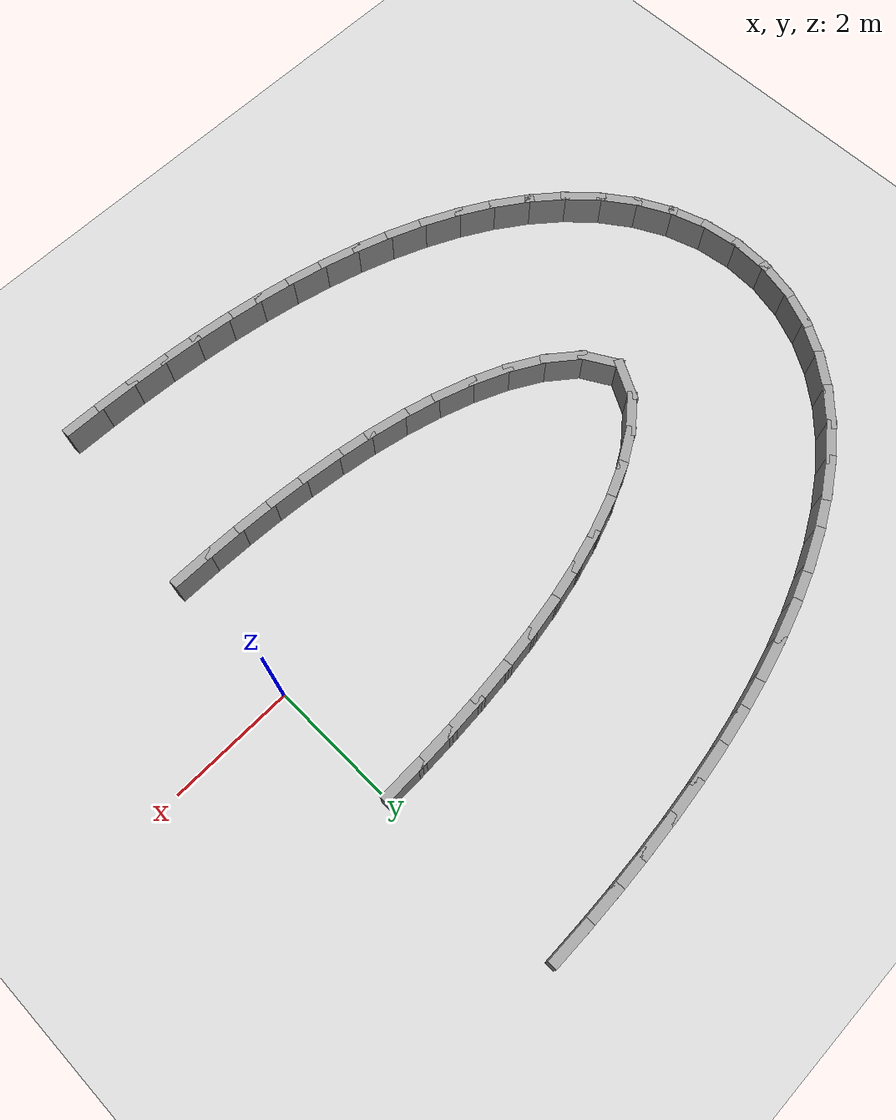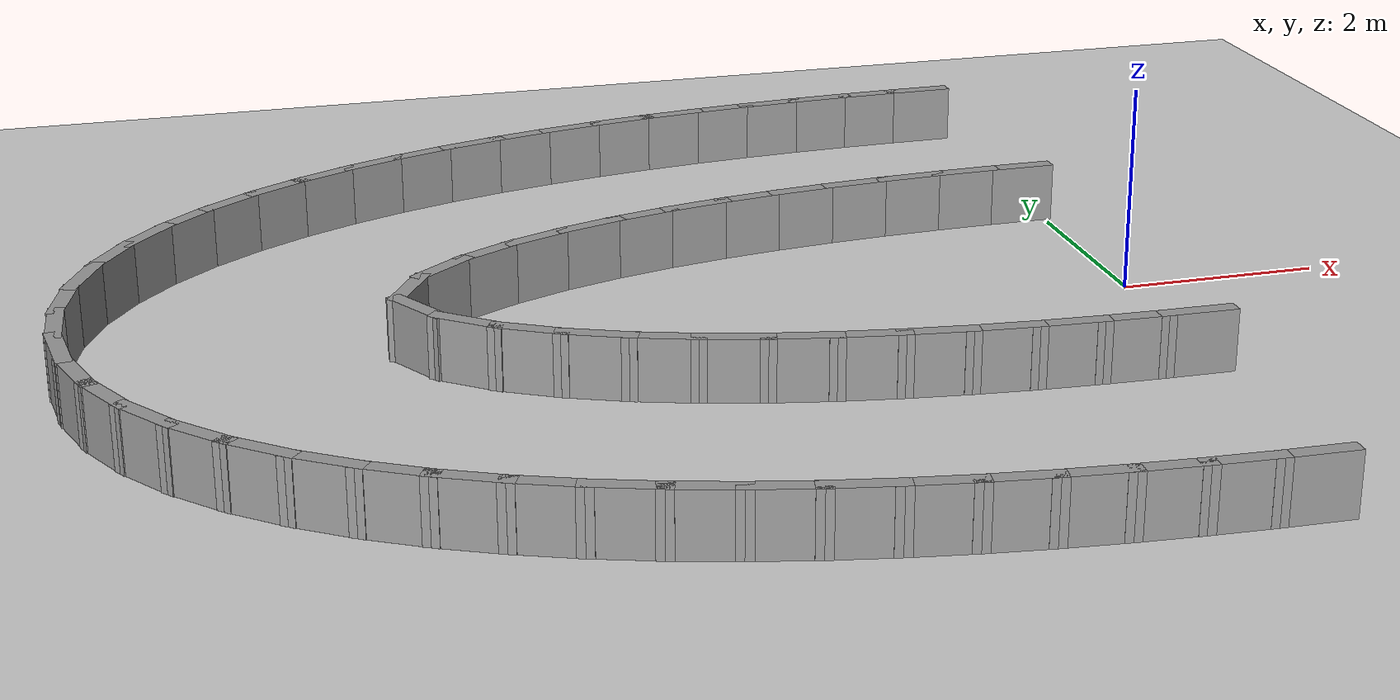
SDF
<sdf version="1.7">
 <world name="default">
  <model name="ground_plane">
   <static>1</static>
   <link name="link">
    <collision name="collision">
     <geometry><plane><normal>0 0 1</normal><size>100 100</size></plane></geometry>
     <surface><friction><ode><mu>100</mu><mu2>50</mu2></ode></friction></surface>
    </collision>
    <visual name="visual">
     <cast_shadows>0</cast_shadows>
     <geometry><plane><normal>0 0 1</normal><size>100 100</size></plane></geometry>
     <material>
      <script><uri>file://media/materials/scripts/gazebo.material</uri><name>Gazebo/Grey</name></script>
     </material>
    </visual>
   </link>
  </model>
  <model name="rand_lobed_03">
   <link name="Wall_13">
    <collision name="Wall_13_Collision">
     <geometry><box><size>0.7500 0.1500 0.6000</size></box></geometry>
     <pose>0 0 0.3000 0 -0 0</pose>
    </collision>
    <visual name="Wall_13_Visual">
     <pose>0 0 0.3000 0 -0 0</pose>
     <geometry><box><size>0.7500 0.1500 0.6000</size></box></geometry>
     <material>
      <script><uri>file://media/materials/scripts/gazebo.material</uri><name>Gazebo/Grey</name></script>
      <ambient>1 1 1 1</ambient>
     </material>
    </visual>
    <pose>-0.3003 2.1726 0 0 -0 -3.13076</pose>
   </link>
   <link name="Wall_14">
    <collision name="Wall_14_Collision">
     <geometry><box><size>0.7500 0.1500 0.6000</size></box></geometry>
     <pose>0 0 0.3000 0 -0 0</pose>
    </collision>
    <visual name="Wall_14_Visual">
     <pose>0 0 0.3000 0 -0 0</pose>
     <geometry><box><size>0.7500 0.1500 0.6000</size></box></geometry>
     <material>
      <script><uri>file://media/materials/scripts/gazebo.material</uri><name>Gazebo/Grey</name></script>
      <ambient>1 1 1 1</ambient>
     </material>
    </visual>
    <pose>-0.9001 2.1594 0 0 -0 -3.10826</pose>
   </link>
   <link name="Wall_15">
    <collision name="Wall_15_Collision">
     <geometry><box><size>0.7500 0.1500 0.6000</size></box></geometry>
     <pose>0 0 0.3000 0 -0 0</pose>
    </collision>
    <visual name="Wall_15_Visual">
     <pose>0 0 0.3000 0 -0 0</pose>
     <geometry><box><size>0.7500 0.1500 0.6000</size></box></geometry>
     <material>
      <script><uri>file://media/materials/scripts/gazebo.material</uri><name>Gazebo/Grey</name></script>
      <ambient>1 1 1 1</ambient>
     </material>
    </visual>
    <pose>-1.4994 2.1319 0 0 -0 -3.08331</pose>
   </link>
   <link name="Wall_16">
    <collision name="Wall_16_Collision">
     <geometry><box><size>0.7500 0.1500 0.6000</size></box></geometry>
     <pose>0 0 0.3000 0 -0 0</pose>
    </collision>
    <visual name="Wall_16_Visual">
     <pose>0 0 0.3000 0 -0 0</pose>
     <geometry><box><size>0.7500 0.1500 0.6000</size></box></geometry>
     <material>
      <script><uri>file://media/materials/scripts/gazebo.material</uri><name>Gazebo/Grey</name></script>
      <ambient>1 1 1 1</ambient>
     </material>
    </visual>
    <pose>-2.0977 2.0884 0 0 -0 -3.05459</pose>
   </link>
   <link name="Wall_17">
    <collision name="Wall_17_Collision">
     <geometry><box><size>0.7500 0.1500 0.6000</size></box></geometry>
     <pose>0 0 0.3000 0 -0 0</pose>
    </collision>
    <visual name="Wall_17_Visual">
     <pose>0 0 0.3000 0 -0 0</pose>
     <geometry><box><size>0.7500 0.1500 0.6000</size></box></geometry>
     <material>
      <script><uri>file://media/materials/scripts/gazebo.material</uri><name>Gazebo/Grey</name></script>
      <ambient>1 1 1 1</ambient>
     </material>
    </visual>
    <pose>-2.6944 2.0262 0 0 -0 -3.02105</pose>
   </link>
   <link name="Wall_18">
    <collision name="Wall_18_Collision">
     <geometry><box><size>0.7500 0.1500 0.6000</size></box></geometry>
     <pose>0 0 0.3000 0 -0 0</pose>
    </collision>
    <visual name="Wall_18_Visual">
     <pose>0 0 0.3000 0 -0 0</pose>
     <geometry><box><size>0.7500 0.1500 0.6000</size></box></geometry>
     <material>
      <script><uri>file://media/materials/scripts/gazebo.material</uri><name>Gazebo/Grey</name></script>
      <ambient>1 1 1 1</ambient>
     </material>
    </visual>
    <pose>-3.2883 1.9424 0 0 -0 -2.98176</pose>
   </link>
   <link name="Wall_19">
    <collision name="Wall_19_Collision">
     <geometry><box><size>0.7499 0.1500 0.6000</size></box></geometry>
     <pose>0 0 0.3000 0 -0 0</pose>
    </collision>
    <visual name="Wall_19_Visual">
     <pose>0 0 0.3000 0 -0 0</pose>
     <geometry><box><size>0.7499 0.1500 0.6000</size></box></geometry>
     <material>
      <script><uri>file://media/materials/scripts/gazebo.material</uri><name>Gazebo/Grey</name></script>
      <ambient>1 1 1 1</ambient>
     </material>
    </visual>
    <pose>-3.8781 1.8333 0 0 -0 -2.93562</pose>
   </link>
   <link name="Wall_20">
    <collision name="Wall_20_Collision">
     <geometry><box><size>0.7499 0.1500 0.6000</size></box></geometry>
     <pose>0 0 0.3000 0 -0 0</pose>
    </collision>
    <visual name="Wall_20_Visual">
     <pose>0 0 0.3000 0 -0 0</pose>
     <geometry><box><size>0.7499 0.1500 0.6000</size></box></geometry>
     <material>
      <script><uri>file://media/materials/scripts/gazebo.material</uri><name>Gazebo/Grey</name></script>
      <ambient>1 1 1 1</ambient>
     </material>
    </visual>
    <pose>-4.4616 1.6947 0 0 -0 -2.88102</pose>
   </link>
   <link name="Wall_21">
    <collision name="Wall_21_Collision">
     <geometry><box><size>0.7499 0.1500 0.6000</size></box></geometry>
     <pose>0 0 0.3000 0 -0 0</pose>
    </collision>
    <visual name="Wall_21_Visual">
     <pose>0 0 0.3000 0 -0 0</pose>
     <geometry><box><size>0.7499 0.1500 0.6000</size></box></geometry>
     <material>
      <script><uri>file://media/materials/scripts/gazebo.material</uri><name>Gazebo/Grey</name></script>
      <ambient>1 1 1 1</ambient>
     </material>
    </visual>
    <pose>-5.0355 1.5213 0 0 -0 -2.81521</pose>
   </link>
   <link name="Wall_22">
    <collision name="Wall_22_Collision">
     <geometry><box><size>0.7498 0.1500 0.6000</size></box></geometry>
     <pose>0 0 0.3000 0 -0 0</pose>
    </collision>
    <visual name="Wall_22_Visual">
     <pose>0 0 0.3000 0 -0 0</pose>
     <geometry><box><size>0.7498 0.1500 0.6000</size></box></geometry>
     <material>
      <script><uri>file://media/materials/scripts/gazebo.material</uri><name>Gazebo/Grey</name></script>
      <ambient>1 1 1 1</ambient>
     </material>
    </visual>
    <pose>-5.5948 1.3059 0 0 -0 -2.73302</pose>
   </link>
   <link name="Wall_23">
    <collision name="Wall_23_Collision">
     <geometry><box><size>0.7496 0.1500 0.6000</size></box></geometry>
     <pose>0 0 0.3000 0 -0 0</pose>
    </collision>
    <visual name="Wall_23_Visual">
     <pose>0 0 0.3000 0 -0 0</pose>
     <geometry><box><size>0.7496 0.1500 0.6000</size></box></geometry>
     <material>
      <script><uri>file://media/materials/scripts/gazebo.material</uri><name>Gazebo/Grey</name></script>
      <ambient>1 1 1 1</ambient>
     </material>
    </visual>
    <pose>-6.1305 1.0383 0 0 -0 -2.62355</pose>
   </link>
   <link name="Wall_24">
    <collision name="Wall_24_Collision">
     <geometry><box><size>0.7489 0.1500 0.6000</size></box></geometry>
     <pose>0 0 0.3000 0 -0 0</pose>
    </collision>
    <visual name="Wall_24_Visual">
     <pose>0 0 0.3000 0 -0 0</pose>
     <geometry><box><size>0.7489 0.1500 0.6000</size></box></geometry>
     <material>
      <script><uri>file://media/materials/scripts/gazebo.material</uri><name>Gazebo/Grey</name></script>
      <ambient>1 1 1 1</ambient>
     </material>
    </visual>
    <pose>-6.6231 0.7008 0 0 -0 -2.45816</pose>
   </link>
   <link name="Wall_25">
    <collision name="Wall_25_Collision">
     <geometry><box><size>0.7376 0.1500 0.6000</size></box></geometry>
     <pose>0 0 0.3000 0 -0 0</pose>
    </collision>
    <visual name="Wall_25_Visual">
     <pose>0 0 0.3000 0 -0 0</pose>
     <geometry><box><size>0.7376 0.1500 0.6000</size></box></geometry>
     <material>
      <script><uri>file://media/materials/scripts/gazebo.material</uri><name>Gazebo/Grey</name></script>
      <ambient>1 1 1 1</ambient>
     </material>
    </visual>
    <pose>-6.9992 0.2556 0 0 -0 -2.08253</pose>
   </link>
   <link name="Wall_26">
    <collision name="Wall_26_Collision">
     <geometry><box><size>0.7377 0.1500 0.6000</size></box></geometry>
     <pose>0 0 0.3000 0 -0 0</pose>
    </collision>
    <visual name="Wall_26_Visual">
     <pose>0 0 0.3000 0 -0 0</pose>
     <geometry><box><size>0.7377 0.1500 0.6000</size></box></geometry>
     <material>
      <script><uri>file://media/materials/scripts/gazebo.material</uri><name>Gazebo/Grey</name></script>
      <ambient>1 1 1 1</ambient>
     </material>
    </visual>
    <pose>-6.9988 -0.2566 0 0 -0 -1.05758</pose>
   </link>
   <link name="Wall_27">
    <collision name="Wall_27_Collision">
     <geometry><box><size>0.7489 0.1500 0.6000</size></box></geometry>
     <pose>0 0 0.3000 0 -0 0</pose>
    </collision>
    <visual name="Wall_27_Visual">
     <pose>0 0 0.3000 0 -0 0</pose>
     <geometry><box><size>0.7489 0.1500 0.6000</size></box></geometry>
     <material>
      <script><uri>file://media/materials/scripts/gazebo.material</uri><name>Gazebo/Grey</name></script>
      <ambient>1 1 1 1</ambient>
     </material>
    </visual>
    <pose>-6.6222 -0.7016 0 0 -0 -0.68301</pose>
   </link>
   <link name="Wall_28">
    <collision name="Wall_28_Collision">
     <geometry><box><size>0.7496 0.1500 0.6000</size></box></geometry>
     <pose>0 0 0.3000 0 -0 0</pose>
    </collision>
    <visual name="Wall_28_Visual">
     <pose>0 0 0.3000 0 -0 0</pose>
     <geometry><box><size>0.7496 0.1500 0.6000</size></box></geometry>
     <material>
      <script><uri>file://media/materials/scripts/gazebo.material</uri><name>Gazebo/Grey</name></script>
      <ambient>1 1 1 1</ambient>
     </material>
    </visual>
    <pose>-6.1295 -1.0389 0 0 -0 -0.51780</pose>
   </link>
   <link name="Wall_29">
    <collision name="Wall_29_Collision">
     <geometry><box><size>0.7498 0.1500 0.6000</size></box></geometry>
     <pose>0 0 0.3000 0 -0 0</pose>
    </collision>
    <visual name="Wall_29_Visual">
     <pose>0 0 0.3000 0 -0 0</pose>
     <geometry><box><size>0.7498 0.1500 0.6000</size></box></geometry>
     <material>
      <script><uri>file://media/materials/scripts/gazebo.material</uri><name>Gazebo/Grey</name></script>
      <ambient>1 1 1 1</ambient>
     </material>
    </visual>
    <pose>-5.5937 -1.3064 0 0 -0 -0.40839</pose>
   </link>
   <link name="Wall_30">
    <collision name="Wall_30_Collision">
     <geometry><box><size>0.7499 0.1500 0.6000</size></box></geometry>
     <pose>0 0 0.3000 0 -0 0</pose>
    </collision>
    <visual name="Wall_30_Visual">
     <pose>0 0 0.3000 0 -0 0</pose>
     <geometry><box><size>0.7499 0.1500 0.6000</size></box></geometry>
     <material>
      <script><uri>file://media/materials/scripts/gazebo.material</uri><name>Gazebo/Grey</name></script>
      <ambient>1 1 1 1</ambient>
     </material>
    </visual>
    <pose>-5.0344 -1.5216 0 0 -0 -0.32624</pose>
   </link>
   <link name="Wall_31">
    <collision name="Wall_31_Collision">
     <geometry><box><size>0.7499 0.1500 0.6000</size></box></geometry>
     <pose>0 0 0.3000 0 -0 0</pose>
    </collision>
    <visual name="Wall_31_Visual">
     <pose>0 0 0.3000 0 -0 0</pose>
     <geometry><box><size>0.7499 0.1500 0.6000</size></box></geometry>
     <material>
      <script><uri>file://media/materials/scripts/gazebo.material</uri><name>Gazebo/Grey</name></script>
      <ambient>1 1 1 1</ambient>
     </material>
    </visual>
    <pose>-4.4604 -1.6950 0 0 -0 -0.26045</pose>
   </link>
   <link name="Wall_32">
    <collision name="Wall_32_Collision">
     <geometry><box><size>0.7499 0.1500 0.6000</size></box></geometry>
     <pose>0 0 0.3000 0 -0 0</pose>
    </collision>
    <visual name="Wall_32_Visual">
     <pose>0 0 0.3000 0 -0 0</pose>
     <geometry><box><size>0.7499 0.1500 0.6000</size></box></geometry>
     <material>
      <script><uri>file://media/materials/scripts/gazebo.material</uri><name>Gazebo/Grey</name></script>
      <ambient>1 1 1 1</ambient>
     </material>
    </visual>
    <pose>-3.8770 -1.8336 0 0 -0 -0.20588</pose>
   </link>
   <link name="Wall_33">
    <collision name="Wall_33_Collision">
     <geometry><box><size>0.7500 0.1500 0.6000</size></box></geometry>
     <pose>0 0 0.3000 0 -0 0</pose>
    </collision>
    <visual name="Wall_33_Visual">
     <pose>0 0 0.3000 0 -0 0</pose>
     <geometry><box><size>0.7500 0.1500 0.6000</size></box></geometry>
     <material>
      <script><uri>file://media/materials/scripts/gazebo.material</uri><name>Gazebo/Grey</name></script>
      <ambient>1 1 1 1</ambient>
     </material>
    </visual>
    <pose>-3.2872 -1.9426 0 0 -0 -0.15975</pose>
   </link>
   <link name="Wall_34">
    <collision name="Wall_34_Collision">
     <geometry><box><size>0.7500 0.1500 0.6000</size></box></geometry>
     <pose>0 0 0.3000 0 -0 0</pose>
    </collision>
    <visual name="Wall_34_Visual">
     <pose>0 0 0.3000 0 -0 0</pose>
     <geometry><box><size>0.7500 0.1500 0.6000</size></box></geometry>
     <material>
      <script><uri>file://media/materials/scripts/gazebo.material</uri><name>Gazebo/Grey</name></script>
      <ambient>1 1 1 1</ambient>
     </material>
    </visual>
    <pose>-2.6932 -2.0264 0 0 -0 -0.12047</pose>
   </link>
   <link name="Wall_35">
    <collision name="Wall_35_Collision">
     <geometry><box><size>0.7500 0.1500 0.6000</size></box></geometry>
     <pose>0 0 0.3000 0 -0 0</pose>
    </collision>
    <visual name="Wall_35_Visual">
     <pose>0 0 0.3000 0 -0 0</pose>
     <geometry><box><size>0.7500 0.1500 0.6000</size></box></geometry>
     <material>
      <script><uri>file://media/materials/scripts/gazebo.material</uri><name>Gazebo/Grey</name></script>
      <ambient>1 1 1 1</ambient>
     </material>
    </visual>
    <pose>-2.0966 -2.0885 0 0 -0 -0.08694</pose>
   </link>
   <link name="Wall_36">
    <collision name="Wall_36_Collision">
     <geometry><box><size>0.7500 0.1500 0.6000</size></box></geometry>
     <pose>0 0 0.3000 0 -0 0</pose>
    </collision>
    <visual name="Wall_36_Visual">
     <pose>0 0 0.3000 0 -0 0</pose>
     <geometry><box><size>0.7500 0.1500 0.6000</size></box></geometry>
     <material>
      <script><uri>file://media/materials/scripts/gazebo.material</uri><name>Gazebo/Grey</name></script>
      <ambient>1 1 1 1</ambient>
     </material>
    </visual>
    <pose>-1.4982 -2.1320 0 0 -0 -0.05823</pose>
   </link>
   <link name="Wall_37">
    <collision name="Wall_37_Collision">
     <geometry><box><size>0.7500 0.1500 0.6000</size></box></geometry>
     <pose>0 0 0.3000 0 -0 0</pose>
    </collision>
    <visual name="Wall_37_Visual">
     <pose>0 0 0.3000 0 -0 0</pose>
     <geometry><box><size>0.7500 0.1500 0.6000</size></box></geometry>
     <material>
      <script><uri>file://media/materials/scripts/gazebo.material</uri><name>Gazebo/Grey</name></script>
      <ambient>1 1 1 1</ambient>
     </material>
    </visual>
    <pose>-0.8989 -2.1594 0 0 -0 -0.03329</pose>
   </link>
   <link name="Wall_38">
    <collision name="Wall_38_Collision">
     <geometry><box><size>0.7500 0.1500 0.6000</size></box></geometry>
     <pose>0 0 0.3000 0 -0 0</pose>
    </collision>
    <visual name="Wall_38_Visual">
     <pose>0 0 0.3000 0 -0 0</pose>
     <geometry><box><size>0.7500 0.1500 0.6000</size></box></geometry>
     <material>
      <script><uri>file://media/materials/scripts/gazebo.material</uri><name>Gazebo/Grey</name></script>
      <ambient>1 1 1 1</ambient>
     </material>
    </visual>
    <pose>-0.2991 -2.1726 0 0 -0 -0.01079</pose>
   </link>
   <link name="Wall_72">
    <collision name="Wall_72_Collision">
     <geometry><box><size>0.7500 0.1500 0.6000</size></box></geometry>
     <pose>0 0 0.3000 0 -0 0</pose>
    </collision>
    <visual name="Wall_72_Visual">
     <pose>0 0 0.3000 0 -0 0</pose>
     <geometry><box><size>0.7500 0.1500 0.6000</size></box></geometry>
     <material>
      <script><uri>file://media/materials/scripts/gazebo.material</uri><name>Gazebo/Grey</name></script>
      <ambient>1 1 1 1</ambient>
     </material>
    </visual>
    <pose>-0.3574 5.1917 0 0 -0 -3.12996</pose>
   </link>
   <link name="Wall_73">
    <collision name="Wall_73_Collision">
     <geometry><box><size>0.7500 0.1500 0.6000</size></box></geometry>
     <pose>0 0 0.3000 0 -0 0</pose>
    </collision>
    <visual name="Wall_73_Visual">
     <pose>0 0 0.3000 0 -0 0</pose>
     <geometry><box><size>0.7500 0.1500 0.6000</size></box></geometry>
     <material>
      <script><uri>file://media/materials/scripts/gazebo.material</uri><name>Gazebo/Grey</name></script>
      <ambient>1 1 1 1</ambient>
     </material>
    </visual>
    <pose>-0.9573 5.1787 0 0 -0 -3.10979</pose>
   </link>
   <link name="Wall_74">
    <collision name="Wall_74_Collision">
     <geometry><box><size>0.7500 0.1500 0.6000</size></box></geometry>
     <pose>0 0 0.3000 0 -0 0</pose>
    </collision>
    <visual name="Wall_74_Visual">
     <pose>0 0 0.3000 0 -0 0</pose>
     <geometry><box><size>0.7500 0.1500 0.6000</size></box></geometry>
     <material>
      <script><uri>file://media/materials/scripts/gazebo.material</uri><name>Gazebo/Grey</name></script>
      <ambient>1 1 1 1</ambient>
     </material>
    </visual>
    <pose>-1.5567 5.1531 0 0 -0 -3.08795</pose>
   </link>
   <link name="Wall_75">
    <collision name="Wall_75_Collision">
     <geometry><box><size>0.7500 0.1500 0.6000</size></box></geometry>
     <pose>0 0 0.3000 0 -0 0</pose>
    </collision>
    <visual name="Wall_75_Visual">
     <pose>0 0 0.3000 0 -0 0</pose>
     <geometry><box><size>0.7500 0.1500 0.6000</size></box></geometry>
     <material>
      <script><uri>file://media/materials/scripts/gazebo.material</uri><name>Gazebo/Grey</name></script>
      <ambient>1 1 1 1</ambient>
     </material>
    </visual>
    <pose>-2.1553 5.1136 0 0 -0 -3.06363</pose>
   </link>
   <link name="Wall_76">
    <collision name="Wall_76_Collision">
     <geometry><box><size>0.7500 0.1500 0.6000</size></box></geometry>
     <pose>0 0 0.3000 0 -0 0</pose>
    </collision>
    <visual name="Wall_76_Visual">
     <pose>0 0 0.3000 0 -0 0</pose>
     <geometry><box><size>0.7500 0.1500 0.6000</size></box></geometry>
     <material>
      <script><uri>file://media/materials/scripts/gazebo.material</uri><name>Gazebo/Grey</name></script>
      <ambient>1 1 1 1</ambient>
     </material>
    </visual>
    <pose>-2.7527 5.0587 0 0 -0 -3.03634</pose>
   </link>
   <link name="Wall_77">
    <collision name="Wall_77_Collision">
     <geometry><box><size>0.7500 0.1500 0.6000</size></box></geometry>
     <pose>0 0 0.3000 0 -0 0</pose>
    </collision>
    <visual name="Wall_77_Visual">
     <pose>0 0 0.3000 0 -0 0</pose>
     <geometry><box><size>0.7500 0.1500 0.6000</size></box></geometry>
     <material>
      <script><uri>file://media/materials/scripts/gazebo.material</uri><name>Gazebo/Grey</name></script>
      <ambient>1 1 1 1</ambient>
     </material>
    </visual>
    <pose>-3.3483 4.9866 0 0 -0 -3.00571</pose>
   </link>
   <link name="Wall_78">
    <collision name="Wall_78_Collision">
     <geometry><box><size>0.7500 0.1500 0.6000</size></box></geometry>
     <pose>0 0 0.3000 0 -0 0</pose>
    </collision>
    <visual name="Wall_78_Visual">
     <pose>0 0 0.3000 0 -0 0</pose>
     <geometry><box><size>0.7500 0.1500 0.6000</size></box></geometry>
     <material>
      <script><uri>file://media/materials/scripts/gazebo.material</uri><name>Gazebo/Grey</name></script>
      <ambient>1 1 1 1</ambient>
     </material>
    </visual>
    <pose>-3.9411 4.8952 0 0 -0 -2.97149</pose>
   </link>
   <link name="Wall_79">
    <collision name="Wall_79_Collision">
     <geometry><box><size>0.7500 0.1500 0.6000</size></box></geometry>
     <pose>0 0 0.3000 0 -0 0</pose>
    </collision>
    <visual name="Wall_79_Visual">
     <pose>0 0 0.3000 0 -0 0</pose>
     <geometry><box><size>0.7500 0.1500 0.6000</size></box></geometry>
     <material>
      <script><uri>file://media/materials/scripts/gazebo.material</uri><name>Gazebo/Grey</name></script>
      <ambient>1 1 1 1</ambient>
     </material>
    </visual>
    <pose>-4.5303 4.7824 0 0 -0 -2.93336</pose>
   </link>
   <link name="Wall_80">
    <collision name="Wall_80_Collision">
     <geometry><box><size>0.7499 0.1500 0.6000</size></box></geometry>
     <pose>0 0 0.3000 0 -0 0</pose>
    </collision>
    <visual name="Wall_80_Visual">
     <pose>0 0 0.3000 0 -0 0</pose>
     <geometry><box><size>0.7499 0.1500 0.6000</size></box></geometry>
     <material>
      <script><uri>file://media/materials/scripts/gazebo.material</uri><name>Gazebo/Grey</name></script>
      <ambient>1 1 1 1</ambient>
     </material>
    </visual>
    <pose>-5.1144 4.6459 0 0 -0 -2.89095</pose>
   </link>
   <link name="Wall_81">
    <collision name="Wall_81_Collision">
     <geometry><box><size>0.7499 0.1500 0.6000</size></box></geometry>
     <pose>0 0 0.3000 0 -0 0</pose>
    </collision>
    <visual name="Wall_81_Visual">
     <pose>0 0 0.3000 0 -0 0</pose>
     <geometry><box><size>0.7499 0.1500 0.6000</size></box></geometry>
     <material>
      <script><uri>file://media/materials/scripts/gazebo.material</uri><name>Gazebo/Grey</name></script>
      <ambient>1 1 1 1</ambient>
     </material>
    </visual>
    <pose>-5.6918 4.4835 0 0 -0 -2.84365</pose>
   </link>
   <link name="Wall_82">
    <collision name="Wall_82_Collision">
     <geometry><box><size>0.7499 0.1500 0.6000</size></box></geometry>
     <pose>0 0 0.3000 0 -0 0</pose>
    </collision>
    <visual name="Wall_82_Visual">
     <pose>0 0 0.3000 0 -0 0</pose>
     <geometry><box><size>0.7499 0.1500 0.6000</size></box></geometry>
     <material>
      <script><uri>file://media/materials/scripts/gazebo.material</uri><name>Gazebo/Grey</name></script>
      <ambient>1 1 1 1</ambient>
     </material>
    </visual>
    <pose>-6.2602 4.2923 0 0 -0 -2.79068</pose>
   </link>
   <link name="Wall_83">
    <collision name="Wall_83_Collision">
     <geometry><box><size>0.7499 0.1500 0.6000</size></box></geometry>
     <pose>0 0 0.3000 0 -0 0</pose>
    </collision>
    <visual name="Wall_83_Visual">
     <pose>0 0 0.3000 0 -0 0</pose>
     <geometry><box><size>0.7499 0.1500 0.6000</size></box></geometry>
     <material>
      <script><uri>file://media/materials/scripts/gazebo.material</uri><name>Gazebo/Grey</name></script>
      <ambient>1 1 1 1</ambient>
     </material>
    </visual>
    <pose>-6.8169 4.0695 0 0 -0 -2.73092</pose>
   </link>
   <link name="Wall_84">
    <collision name="Wall_84_Collision">
     <geometry><box><size>0.7499 0.1500 0.6000</size></box></geometry>
     <pose>0 0 0.3000 0 -0 0</pose>
    </collision>
    <visual name="Wall_84_Visual">
     <pose>0 0 0.3000 0 -0 0</pose>
     <geometry><box><size>0.7499 0.1500 0.6000</size></box></geometry>
     <material>
      <script><uri>file://media/materials/scripts/gazebo.material</uri><name>Gazebo/Grey</name></script>
      <ambient>1 1 1 1</ambient>
     </material>
    </visual>
    <pose>-7.3581 3.8116 0 0 -0 -2.66292</pose>
   </link>
   <link name="Wall_85">
    <collision name="Wall_85_Collision">
     <geometry><box><size>0.7498 0.1500 0.6000</size></box></geometry>
     <pose>0 0 0.3000 0 -0 0</pose>
    </collision>
    <visual name="Wall_85_Visual">
     <pose>0 0 0.3000 0 -0 0</pose>
     <geometry><box><size>0.7498 0.1500 0.6000</size></box></geometry>
     <material>
      <script><uri>file://media/materials/scripts/gazebo.material</uri><name>Gazebo/Grey</name></script>
      <ambient>1 1 1 1</ambient>
     </material>
    </visual>
    <pose>-7.8789 3.5149 0 0 -0 -2.58484</pose>
   </link>
   <link name="Wall_86">
    <collision name="Wall_86_Collision">
     <geometry><box><size>0.7498 0.1500 0.6000</size></box></geometry>
     <pose>0 0 0.3000 0 -0 0</pose>
    </collision>
    <visual name="Wall_86_Visual">
     <pose>0 0 0.3000 0 -0 0</pose>
     <geometry><box><size>0.7498 0.1500 0.6000</size></box></geometry>
     <material>
      <script><uri>file://media/materials/scripts/gazebo.material</uri><name>Gazebo/Grey</name></script>
      <ambient>1 1 1 1</ambient>
     </material>
    </visual>
    <pose>-8.3728 3.1757 0 0 -0 -2.49454</pose>
   </link>
   <link name="Wall_87">
    <collision name="Wall_87_Collision">
     <geometry><box><size>0.7497 0.1500 0.6000</size></box></geometry>
     <pose>0 0 0.3000 0 -0 0</pose>
    </collision>
    <visual name="Wall_87_Visual">
     <pose>0 0 0.3000 0 -0 0</pose>
     <geometry><box><size>0.7497 0.1500 0.6000</size></box></geometry>
     <material>
      <script><uri>file://media/materials/scripts/gazebo.material</uri><name>Gazebo/Grey</name></script>
      <ambient>1 1 1 1</ambient>
     </material>
    </visual>
    <pose>-8.8311 2.7901 0 0 -0 -2.38976</pose>
   </link>
   <link name="Wall_88">
    <collision name="Wall_88_Collision">
     <geometry><box><size>0.7496 0.1500 0.6000</size></box></geometry>
     <pose>0 0 0.3000 0 -0 0</pose>
    </collision>
    <visual name="Wall_88_Visual">
     <pose>0 0 0.3000 0 -0 0</pose>
     <geometry><box><size>0.7496 0.1500 0.6000</size></box></geometry>
     <material>
      <script><uri>file://media/materials/scripts/gazebo.material</uri><name>Gazebo/Grey</name></script>
      <ambient>1 1 1 1</ambient>
     </material>
    </visual>
    <pose>-9.2427 2.3556 0 0 -0 -2.26846</pose>
   </link>
   <link name="Wall_89">
    <collision name="Wall_89_Collision">
     <geometry><box><size>0.7495 0.1500 0.6000</size></box></geometry>
     <pose>0 0 0.3000 0 -0 0</pose>
    </collision>
    <visual name="Wall_89_Visual">
     <pose>0 0 0.3000 0 -0 0</pose>
     <geometry><box><size>0.7495 0.1500 0.6000</size></box></geometry>
     <material>
      <script><uri>file://media/materials/scripts/gazebo.material</uri><name>Gazebo/Grey</name></script>
      <ambient>1 1 1 1</ambient>
     </material>
    </visual>
    <pose>-9.5942 1.8717 0 0 -0 -2.12959</pose>
   </link>
   <link name="Wall_90">
    <collision name="Wall_90_Collision">
     <geometry><box><size>0.7493 0.1500 0.6000</size></box></geometry>
     <pose>0 0 0.3000 0 -0 0</pose>
    </collision>
    <visual name="Wall_90_Visual">
     <pose>0 0 0.3000 0 -0 0</pose>
     <geometry><box><size>0.7493 0.1500 0.6000</size></box></geometry>
     <material>
      <script><uri>file://media/materials/scripts/gazebo.material</uri><name>Gazebo/Grey</name></script>
      <ambient>1 1 1 1</ambient>
     </material>
    </visual>
    <pose>-9.8707 1.3419 0 0 -0 -1.97398</pose>
   </link>
   <link name="Wall_91">
    <collision name="Wall_91_Collision">
     <geometry><box><size>0.7492 0.1500 0.6000</size></box></geometry>
     <pose>0 0 0.3000 0 -0 0</pose>
    </collision>
    <visual name="Wall_91_Visual">
     <pose>0 0 0.3000 0 -0 0</pose>
     <geometry><box><size>0.7492 0.1500 0.6000</size></box></geometry>
     <material>
      <script><uri>file://media/materials/scripts/gazebo.material</uri><name>Gazebo/Grey</name></script>
      <ambient>1 1 1 1</ambient>
     </material>
    </visual>
    <pose>-10.0577 0.7748 0 0 -0 -1.80451</pose>
   </link>
   <link name="Wall_92">
    <collision name="Wall_92_Collision">
     <geometry><box><size>0.7492 0.1500 0.6000</size></box></geometry>
     <pose>0 0 0.3000 0 -0 0</pose>
    </collision>
    <visual name="Wall_92_Visual">
     <pose>0 0 0.3000 0 -0 0</pose>
     <geometry><box><size>0.7492 0.1500 0.6000</size></box></geometry>
     <material>
      <script><uri>file://media/materials/scripts/gazebo.material</uri><name>Gazebo/Grey</name></script>
      <ambient>1 1 1 1</ambient>
     </material>
    </visual>
    <pose>-10.1437 0.1842 0 0 -0 -1.62653</pose>
   </link>
   <link name="Wall_93">
    <collision name="Wall_93_Collision">
     <geometry><box><size>0.7492 0.1500 0.6000</size></box></geometry>
     <pose>0 0 0.3000 0 -0 0</pose>
    </collision>
    <visual name="Wall_93_Visual">
     <pose>0 0 0.3000 0 -0 0</pose>
     <geometry><box><size>0.7492 0.1500 0.6000</size></box></geometry>
     <material>
      <script><uri>file://media/materials/scripts/gazebo.material</uri><name>Gazebo/Grey</name></script>
      <ambient>1 1 1 1</ambient>
     </material>
    </visual>
    <pose>-10.1232 -0.4122 0 0 -0 -1.44623</pose>
   </link>
   <link name="Wall_94">
    <collision name="Wall_94_Collision">
     <geometry><box><size>0.7493 0.1500 0.6000</size></box></geometry>
     <pose>0 0 0.3000 0 -0 0</pose>
    </collision>
    <visual name="Wall_94_Visual">
     <pose>0 0 0.3000 0 -0 0</pose>
     <geometry><box><size>0.7493 0.1500 0.6000</size></box></geometry>
     <material>
      <script><uri>file://media/materials/scripts/gazebo.material</uri><name>Gazebo/Grey</name></script>
      <ambient>1 1 1 1</ambient>
     </material>
    </visual>
    <pose>-9.9974 -0.9957 0 0 -0 -1.27081</pose>
   </link>
   <link name="Wall_95">
    <collision name="Wall_95_Collision">
     <geometry><box><size>0.7494 0.1500 0.6000</size></box></geometry>
     <pose>0 0 0.3000 0 -0 0</pose>
    </collision>
    <visual name="Wall_95_Visual">
     <pose>0 0 0.3000 0 -0 0</pose>
     <geometry><box><size>0.7494 0.1500 0.6000</size></box></geometry>
     <material>
      <script><uri>file://media/materials/scripts/gazebo.material</uri><name>Gazebo/Grey</name></script>
      <ambient>1 1 1 1</ambient>
     </material>
    </visual>
    <pose>-9.7746 -1.5499 0 0 -0 -1.10615</pose>
   </link>
   <link name="Wall_96">
    <collision name="Wall_96_Collision">
     <geometry><box><size>0.7495 0.1500 0.6000</size></box></geometry>
     <pose>0 0 0.3000 0 -0 0</pose>
    </collision>
    <visual name="Wall_96_Visual">
     <pose>0 0 0.3000 0 -0 0</pose>
     <geometry><box><size>0.7495 0.1500 0.6000</size></box></geometry>
     <material>
      <script><uri>file://media/materials/scripts/gazebo.material</uri><name>Gazebo/Grey</name></script>
      <ambient>1 1 1 1</ambient>
     </material>
    </visual>
    <pose>-9.4676 -2.0628 0 0 -0 -0.95673</pose>
   </link>
   <link name="Wall_97">
    <collision name="Wall_97_Collision">
     <geometry><box><size>0.7496 0.1500 0.6000</size></box></geometry>
     <pose>0 0 0.3000 0 -0 0</pose>
    </collision>
    <visual name="Wall_97_Visual">
     <pose>0 0 0.3000 0 -0 0</pose>
     <geometry><box><size>0.7496 0.1500 0.6000</size></box></geometry>
     <material>
      <script><uri>file://media/materials/scripts/gazebo.material</uri><name>Gazebo/Grey</name></script>
      <ambient>1 1 1 1</ambient>
     </material>
    </visual>
    <pose>-9.0914 -2.5279 0 0 -0 -0.82462</pose>
   </link>
   <link name="Wall_98">
    <collision name="Wall_98_Collision">
     <geometry><box><size>0.7497 0.1500 0.6000</size></box></geometry>
     <pose>0 0 0.3000 0 -0 0</pose>
    </collision>
    <visual name="Wall_98_Visual">
     <pose>0 0 0.3000 0 -0 0</pose>
     <geometry><box><size>0.7497 0.1500 0.6000</size></box></geometry>
     <material>
      <script><uri>file://media/materials/scripts/gazebo.material</uri><name>Gazebo/Grey</name></script>
      <ambient>1 1 1 1</ambient>
     </material>
    </visual>
    <pose>-8.6604 -2.9435 0 0 -0 -0.70984</pose>
   </link>
   <link name="Wall_99">
    <collision name="Wall_99_Collision">
     <geometry><box><size>0.7498 0.1500 0.6000</size></box></geometry>
     <pose>0 0 0.3000 0 -0 0</pose>
    </collision>
    <visual name="Wall_99_Visual">
     <pose>0 0 0.3000 0 -0 0</pose>
     <geometry><box><size>0.7498 0.1500 0.6000</size></box></geometry>
     <material>
      <script><uri>file://media/materials/scripts/gazebo.material</uri><name>Gazebo/Grey</name></script>
      <ambient>1 1 1 1</ambient>
     </material>
    </visual>
    <pose>-8.1873 -3.3109 0 0 -0 -0.61086</pose>
   </link>
   <link name="Wall_100">
    <collision name="Wall_100_Collision">
     <geometry><box><size>0.7498 0.1500 0.6000</size></box></geometry>
     <pose>0 0 0.3000 0 -0 0</pose>
    </collision>
    <visual name="Wall_100_Visual">
     <pose>0 0 0.3000 0 -0 0</pose>
     <geometry><box><size>0.7498 0.1500 0.6000</size></box></geometry>
     <material>
      <script><uri>file://media/materials/scripts/gazebo.material</uri><name>Gazebo/Grey</name></script>
      <ambient>1 1 1 1</ambient>
     </material>
    </visual>
    <pose>-7.6822 -3.6334 0 0 -0 -0.52551</pose>
   </link>
   <link name="Wall_101">
    <collision name="Wall_101_Collision">
     <geometry><box><size>0.7499 0.1500 0.6000</size></box></geometry>
     <pose>0 0 0.3000 0 -0 0</pose>
    </collision>
    <visual name="Wall_101_Visual">
     <pose>0 0 0.3000 0 -0 0</pose>
     <geometry><box><size>0.7499 0.1500 0.6000</size></box></geometry>
     <material>
      <script><uri>file://media/materials/scripts/gazebo.material</uri><name>Gazebo/Grey</name></script>
      <ambient>1 1 1 1</ambient>
     </material>
    </visual>
    <pose>-7.1529 -3.9147 0 0 -0 -0.45155</pose>
   </link>
   <link name="Wall_102">
    <collision name="Wall_102_Collision">
     <geometry><box><size>0.7499 0.1500 0.6000</size></box></geometry>
     <pose>0 0 0.3000 0 -0 0</pose>
    </collision>
    <visual name="Wall_102_Visual">
     <pose>0 0 0.3000 0 -0 0</pose>
     <geometry><box><size>0.7499 0.1500 0.6000</size></box></geometry>
     <material>
      <script><uri>file://media/materials/scripts/gazebo.material</uri><name>Gazebo/Grey</name></script>
      <ambient>1 1 1 1</ambient>
     </material>
    </visual>
    <pose>-6.6052 -4.1588 0 0 -0 -0.38690</pose>
   </link>
   <link name="Wall_103">
    <collision name="Wall_103_Collision">
     <geometry><box><size>0.7499 0.1500 0.6000</size></box></geometry>
     <pose>0 0 0.3000 0 -0 0</pose>
    </collision>
    <visual name="Wall_103_Visual">
     <pose>0 0 0.3000 0 -0 0</pose>
     <geometry><box><size>0.7499 0.1500 0.6000</size></box></geometry>
     <material>
      <script><uri>file://media/materials/scripts/gazebo.material</uri><name>Gazebo/Grey</name></script>
      <ambient>1 1 1 1</ambient>
     </material>
    </visual>
    <pose>-6.0436 -4.3691 0 0 -0 -0.32989</pose>
   </link>
   <link name="Wall_104">
    <collision name="Wall_104_Collision">
     <geometry><box><size>0.7499 0.1500 0.6000</size></box></geometry>
     <pose>0 0 0.3000 0 -0 0</pose>
    </collision>
    <visual name="Wall_104_Visual">
     <pose>0 0 0.3000 0 -0 0</pose>
     <geometry><box><size>0.7499 0.1500 0.6000</size></box></geometry>
     <material>
      <script><uri>file://media/materials/scripts/gazebo.material</uri><name>Gazebo/Grey</name></script>
      <ambient>1 1 1 1</ambient>
     </material>
    </visual>
    <pose>-5.4715 -4.5490 0 0 -0 -0.27920</pose>
   </link>
   <link name="Wall_105">
    <collision name="Wall_105_Collision">
     <geometry><box><size>0.7500 0.1500 0.6000</size></box></geometry>
     <pose>0 0 0.3000 0 -0 0</pose>
    </collision>
    <visual name="Wall_105_Visual">
     <pose>0 0 0.3000 0 -0 0</pose>
     <geometry><box><size>0.7500 0.1500 0.6000</size></box></geometry>
     <material>
      <script><uri>file://media/materials/scripts/gazebo.material</uri><name>Gazebo/Grey</name></script>
      <ambient>1 1 1 1</ambient>
     </material>
    </visual>
    <pose>-4.8913 -4.7011 0 0 -0 -0.23384</pose>
   </link>
   <link name="Wall_106">
    <collision name="Wall_106_Collision">
     <geometry><box><size>0.7500 0.1500 0.6000</size></box></geometry>
     <pose>0 0 0.3000 0 -0 0</pose>
    </collision>
    <visual name="Wall_106_Visual">
     <pose>0 0 0.3000 0 -0 0</pose>
     <geometry><box><size>0.7500 0.1500 0.6000</size></box></geometry>
     <material>
      <script><uri>file://media/materials/scripts/gazebo.material</uri><name>Gazebo/Grey</name></script>
      <ambient>1 1 1 1</ambient>
     </material>
    </visual>
    <pose>-4.3051 -4.8282 0 0 -0 -0.19314</pose>
   </link>
   <link name="Wall_107">
    <collision name="Wall_107_Collision">
     <geometry><box><size>0.7500 0.1500 0.6000</size></box></geometry>
     <pose>0 0 0.3000 0 -0 0</pose>
    </collision>
    <visual name="Wall_107_Visual">
     <pose>0 0 0.3000 0 -0 0</pose>
     <geometry><box><size>0.7500 0.1500 0.6000</size></box></geometry>
     <material>
      <script><uri>file://media/materials/scripts/gazebo.material</uri><name>Gazebo/Grey</name></script>
      <ambient>1 1 1 1</ambient>
     </material>
    </visual>
    <pose>-3.7144 -4.9326 0 0 -0 -0.15655</pose>
   </link>
   <link name="Wall_108">
    <collision name="Wall_108_Collision">
     <geometry><box><size>0.7500 0.1500 0.6000</size></box></geometry>
     <pose>0 0 0.3000 0 -0 0</pose>
    </collision>
    <visual name="Wall_108_Visual">
     <pose>0 0 0.3000 0 -0 0</pose>
     <geometry><box><size>0.7500 0.1500 0.6000</size></box></geometry>
     <material>
      <script><uri>file://media/materials/scripts/gazebo.material</uri><name>Gazebo/Grey</name></script>
      <ambient>1 1 1 1</ambient>
     </material>
    </visual>
    <pose>-3.1204 -5.0164 0 0 -0 -0.12375</pose>
   </link>
   <link name="Wall_109">
    <collision name="Wall_109_Collision">
     <geometry><box><size>0.7500 0.1500 0.6000</size></box></geometry>
     <pose>0 0 0.3000 0 -0 0</pose>
    </collision>
    <visual name="Wall_109_Visual">
     <pose>0 0 0.3000 0 -0 0</pose>
     <geometry><box><size>0.7500 0.1500 0.6000</size></box></geometry>
     <material>
      <script><uri>file://media/materials/scripts/gazebo.material</uri><name>Gazebo/Grey</name></script>
      <ambient>1 1 1 1</ambient>
     </material>
    </visual>
    <pose>-2.5240 -5.0817 0 0 -0 -0.09442</pose>
   </link>
   <link name="Wall_110">
    <collision name="Wall_110_Collision">
     <geometry><box><size>0.7500 0.1500 0.6000</size></box></geometry>
     <pose>0 0 0.3000 0 -0 0</pose>
    </collision>
    <visual name="Wall_110_Visual">
     <pose>0 0 0.3000 0 -0 0</pose>
     <geometry><box><size>0.7500 0.1500 0.6000</size></box></geometry>
     <material>
      <script><uri>file://media/materials/scripts/gazebo.material</uri><name>Gazebo/Grey</name></script>
      <ambient>1 1 1 1</ambient>
     </material>
    </visual>
    <pose>-1.9261 -5.1305 0 0 -0 -0.06833</pose>
   </link>
   <link name="Wall_111">
    <collision name="Wall_111_Collision">
     <geometry><box><size>0.7500 0.1500 0.6000</size></box></geometry>
     <pose>0 0 0.3000 0 -0 0</pose>
    </collision>
    <visual name="Wall_111_Visual">
     <pose>0 0 0.3000 0 -0 0</pose>
     <geometry><box><size>0.7500 0.1500 0.6000</size></box></geometry>
     <material>
      <script><uri>file://media/materials/scripts/gazebo.material</uri><name>Gazebo/Grey</name></script>
      <ambient>1 1 1 1</ambient>
     </material>
    </visual>
    <pose>-1.3271 -5.1644 0 0 -0 -0.04502</pose>
   </link>
   <link name="Wall_112">
    <collision name="Wall_112_Collision">
     <geometry><box><size>0.7500 0.1500 0.6000</size></box></geometry>
     <pose>0 0 0.3000 0 -0 0</pose>
    </collision>
    <visual name="Wall_112_Visual">
     <pose>0 0 0.3000 0 -0 0</pose>
     <geometry><box><size>0.7500 0.1500 0.6000</size></box></geometry>
     <material>
      <script><uri>file://media/materials/scripts/gazebo.material</uri><name>Gazebo/Grey</name></script>
      <ambient>1 1 1 1</ambient>
     </material>
    </visual>
    <pose>-0.7275 -5.1851 0 0 -0 -0.02393</pose>
   </link>
   <static>1</static>
  </model>
 </world>
</sdf>
